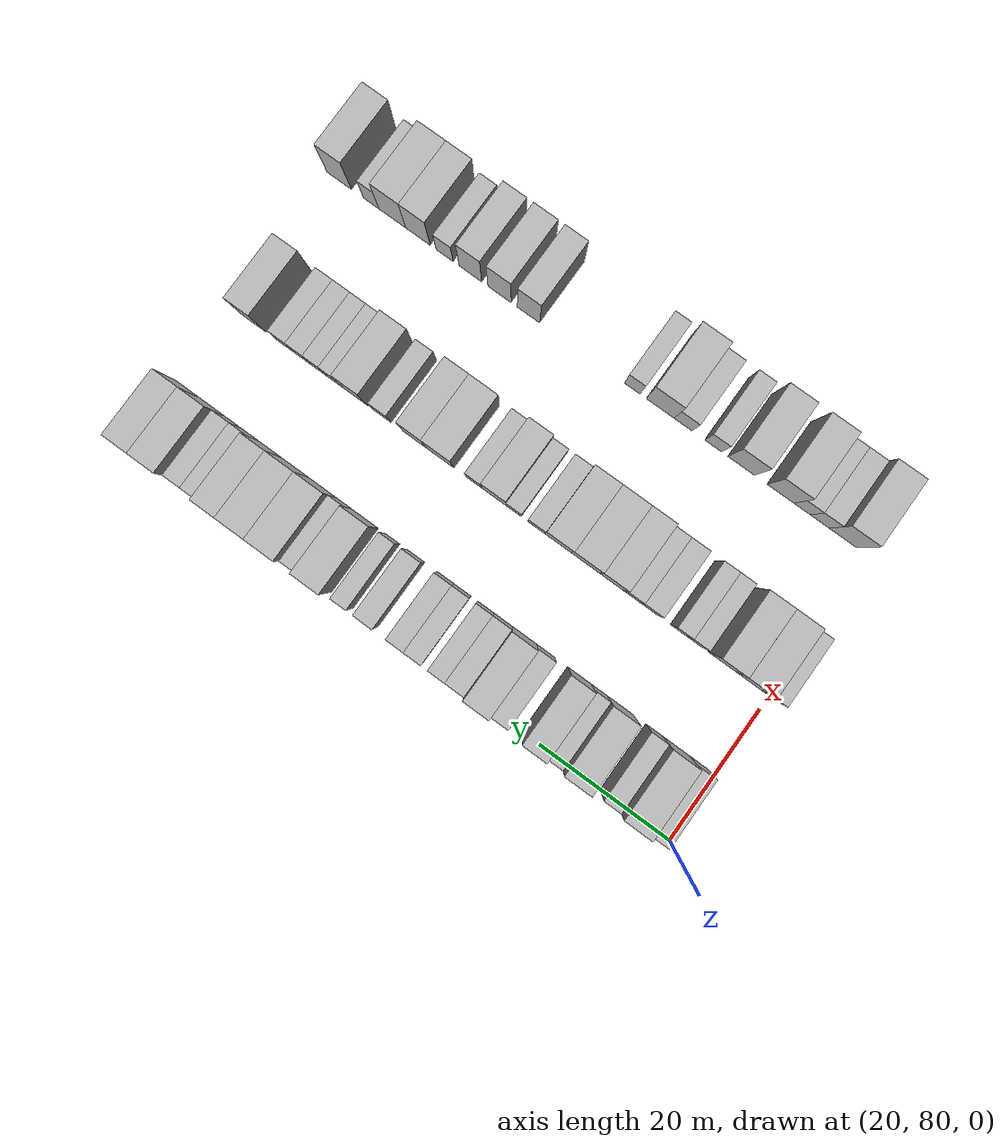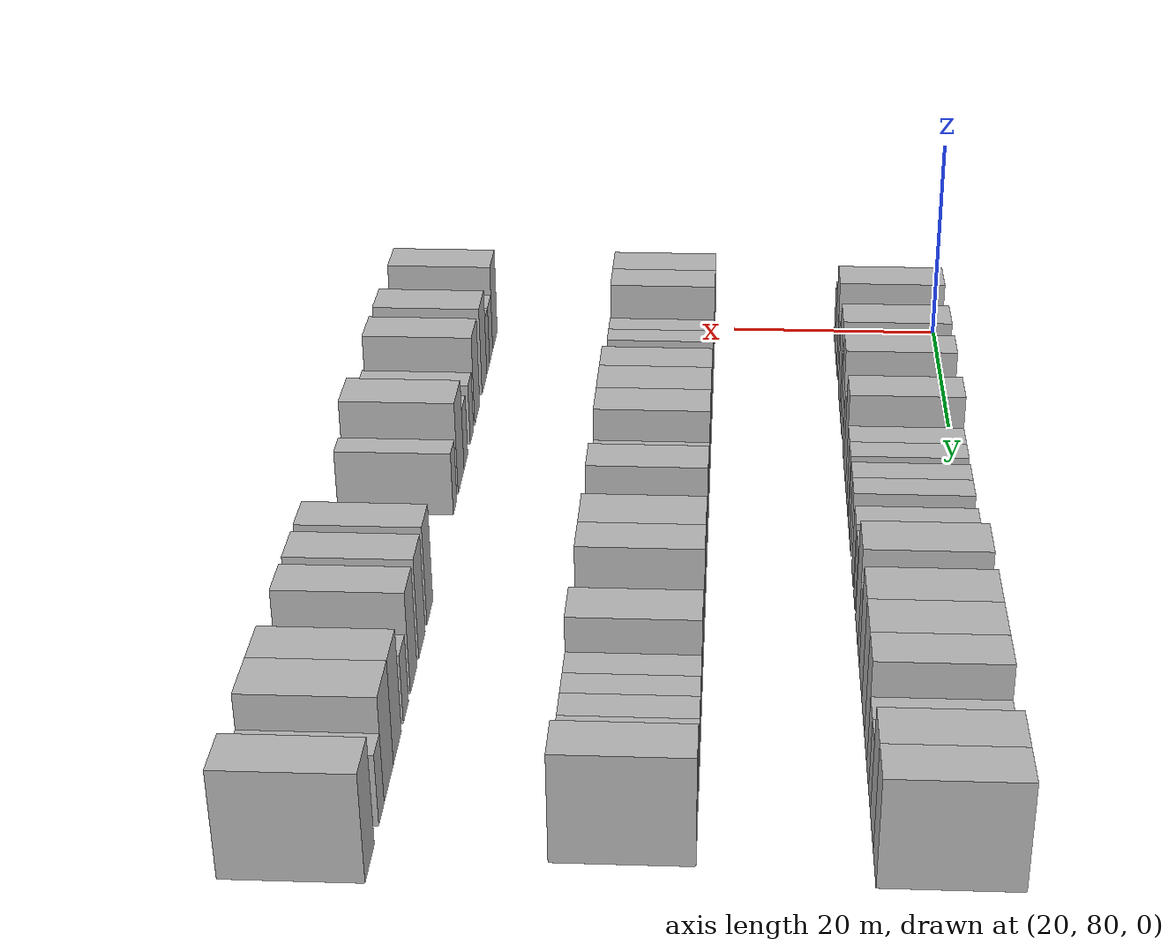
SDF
<sdf version="1.6">
 <world name="default">
  <model name="building_89">
   <static>1</static>
   <pose>25.0000 82.5690 0 0.000000 0.000000 0.000000</pose>
   <link name="link">
    <pose>0 0 3.00 0 0 0</pose>
    <collision name="collision"><geometry><box><size>10.0000 2.9511 6.0000</size></box></geometry></collision>
    <visual name="visual">
     <cast_shadows>0</cast_shadows>
     <geometry><box><size>10.0000 2.9511 6.0000</size></box></geometry>
     <material>
      <script>
       <uri>model://HANNAS_wall/materials/scripts</uri>
       <uri>model://HANNAS_wall/materials/textures</uri>
       <name>vrc/HANNAS_wall</name>
      </script>
     </material>
    </visual>
   </link>
  </model>
  <model name="building_90">
   <static>1</static>
   <pose>25.0000 86.0949 0 0.000000 0.000000 0.000000</pose>
   <link name="link">
    <pose>0 0 4.50 0 0 0</pose>
    <collision name="collision"><geometry><box><size>10.0000 4.1008 9.0000</size></box></geometry></collision>
    <visual name="visual">
     <cast_shadows>0</cast_shadows>
     <geometry><box><size>10.0000 4.1008 9.0000</size></box></geometry>
     <material>
      <script>
       <uri>model://HANNAS_wall/materials/scripts</uri>
       <uri>model://HANNAS_wall/materials/textures</uri>
       <name>vrc/HANNAS_wall</name>
      </script>
     </material>
    </visual>
   </link>
  </model>
  <model name="building_91">
   <static>1</static>
   <pose>25.0000 89.4297 0 0.000000 0.000000 0.000000</pose>
   <link name="link">
    <pose>0 0 3.00 0 0 0</pose>
    <collision name="collision"><geometry><box><size>10.0000 2.5689 6.0000</size></box></geometry></collision>
    <visual name="visual">
     <cast_shadows>0</cast_shadows>
     <geometry><box><size>10.0000 2.5689 6.0000</size></box></geometry>
     <material>
      <script>
       <uri>model://HANNAS_wall/materials/scripts</uri>
       <uri>model://HANNAS_wall/materials/textures</uri>
       <name>vrc/HANNAS_wall</name>
      </script>
     </material>
    </visual>
   </link>
  </model>
  <model name="building_92">
   <static>1</static>
   <pose>25.0000 94.7236 0 0.000000 0.000000 0.000000</pose>
   <link name="link">
    <pose>0 0 4.50 0 0 0</pose>
    <collision name="collision"><geometry><box><size>10.0000 4.0187 9.0000</size></box></geometry></collision>
    <visual name="visual">
     <cast_shadows>0</cast_shadows>
     <geometry><box><size>10.0000 4.0187 9.0000</size></box></geometry>
     <material>
      <script>
       <uri>model://HANNAS_wall/materials/scripts</uri>
       <uri>model://HANNAS_wall/materials/textures</uri>
       <name>vrc/HANNAS_wall</name>
      </script>
     </material>
    </visual>
   </link>
  </model>
  <model name="building_93">
   <static>1</static>
   <pose>25.0000 97.9771 0 0.000000 0.000000 0.000000</pose>
   <link name="link">
    <pose>0 0 3.00 0 0 0</pose>
    <collision name="collision"><geometry><box><size>10.0000 2.4884 6.0000</size></box></geometry></collision>
    <visual name="visual">
     <cast_shadows>0</cast_shadows>
     <geometry><box><size>10.0000 2.4884 6.0000</size></box></geometry>
     <material>
      <script>
       <uri>model://HANNAS_wall/materials/scripts</uri>
       <uri>model://HANNAS_wall/materials/textures</uri>
       <name>vrc/HANNAS_wall</name>
      </script>
     </material>
    </visual>
   </link>
  </model>
  <model name="building_94">
   <static>1</static>
   <pose>25.0000 101.0324 0 0.000000 0.000000 0.000000</pose>
   <link name="link">
    <pose>0 0 4.50 0 0 0</pose>
    <collision name="collision"><geometry><box><size>10.0000 3.6221 9.0000</size></box></geometry></collision>
    <visual name="visual">
     <cast_shadows>0</cast_shadows>
     <geometry><box><size>10.0000 3.6221 9.0000</size></box></geometry>
     <material>
      <script>
       <uri>model://HANNAS_wall/materials/scripts</uri>
       <uri>model://HANNAS_wall/materials/textures</uri>
       <name>vrc/HANNAS_wall</name>
      </script>
     </material>
    </visual>
   </link>
  </model>
  <model name="building_95">
   <static>1</static>
   <pose>25.0000 106.2454 0 0.000000 0.000000 0.000000</pose>
   <link name="link">
    <pose>0 0 3.00 0 0 0</pose>
    <collision name="collision"><geometry><box><size>10.0000 2.8039 6.0000</size></box></geometry></collision>
    <visual name="visual">
     <cast_shadows>0</cast_shadows>
     <geometry><box><size>10.0000 2.8039 6.0000</size></box></geometry>
     <material>
      <script>
       <uri>model://HANNAS_wall/materials/scripts</uri>
       <uri>model://HANNAS_wall/materials/textures</uri>
       <name>vrc/HANNAS_wall</name>
      </script>
     </material>
    </visual>
   </link>
  </model>
  <model name="building_96">
   <static>1</static>
   <pose>25.0000 109.5776 0 0.000000 0.000000 0.000000</pose>
   <link name="link">
    <pose>0 0 4.50 0 0 0</pose>
    <collision name="collision"><geometry><box><size>10.0000 3.8605 9.0000</size></box></geometry></collision>
    <visual name="visual">
     <cast_shadows>0</cast_shadows>
     <geometry><box><size>10.0000 3.8605 9.0000</size></box></geometry>
     <material>
      <script>
       <uri>model://HANNAS_wall/materials/scripts</uri>
       <uri>model://HANNAS_wall/materials/textures</uri>
       <name>vrc/HANNAS_wall</name>
      </script>
     </material>
    </visual>
   </link>
  </model>
  <model name="building_97">
   <static>1</static>
   <pose>25.0000 112.9548 0 0.000000 0.000000 0.000000</pose>
   <link name="link">
    <pose>0 0 3.00 0 0 0</pose>
    <collision name="collision"><geometry><box><size>10.0000 2.8938 6.0000</size></box></geometry></collision>
    <visual name="visual">
     <cast_shadows>0</cast_shadows>
     <geometry><box><size>10.0000 2.8938 6.0000</size></box></geometry>
     <material>
      <script>
       <uri>model://HANNAS_wall/materials/scripts</uri>
       <uri>model://HANNAS_wall/materials/textures</uri>
       <name>vrc/HANNAS_wall</name>
      </script>
     </material>
    </visual>
   </link>
  </model>
  <model name="building_98">
   <static>1</static>
   <pose>25.0000 115.6893 0 0.000000 0.000000 0.000000</pose>
   <link name="link">
    <pose>0 0 3.00 0 0 0</pose>
    <collision name="collision"><geometry><box><size>10.0000 2.5752 6.0000</size></box></geometry></collision>
    <visual name="visual">
     <cast_shadows>0</cast_shadows>
     <geometry><box><size>10.0000 2.5752 6.0000</size></box></geometry>
     <material>
      <script>
       <uri>model://HANNAS_wall/materials/scripts</uri>
       <uri>model://HANNAS_wall/materials/textures</uri>
       <name>vrc/HANNAS_wall</name>
      </script>
     </material>
    </visual>
   </link>
  </model>
  <model name="building_99">
   <static>1</static>
   <pose>25.0000 119.3083 0 0.000000 0.000000 0.000000</pose>
   <link name="link">
    <pose>0 0 3.00 0 0 0</pose>
    <collision name="collision"><geometry><box><size>10.0000 2.6627 6.0000</size></box></geometry></collision>
    <visual name="visual">
     <cast_shadows>0</cast_shadows>
     <geometry><box><size>10.0000 2.6627 6.0000</size></box></geometry>
     <material>
      <script>
       <uri>model://HANNAS_wall/materials/scripts</uri>
       <uri>model://HANNAS_wall/materials/textures</uri>
       <name>vrc/HANNAS_wall</name>
      </script>
     </material>
    </visual>
   </link>
  </model>
  <model name="building_100">
   <static>1</static>
   <pose>25.0000 121.9850 0 0.000000 0.000000 0.000000</pose>
   <link name="link">
    <pose>0 0 3.00 0 0 0</pose>
    <collision name="collision"><geometry><box><size>10.0000 2.6906 6.0000</size></box></geometry></collision>
    <visual name="visual">
     <cast_shadows>0</cast_shadows>
     <geometry><box><size>10.0000 2.6906 6.0000</size></box></geometry>
     <material>
      <script>
       <uri>model://HANNAS_wall/materials/scripts</uri>
       <uri>model://HANNAS_wall/materials/textures</uri>
       <name>vrc/HANNAS_wall</name>
      </script>
     </material>
    </visual>
   </link>
  </model>
  <model name="building_101">
   <static>1</static>
   <pose>25.0000 126.8206 0 0.000000 0.000000 0.000000</pose>
   <link name="link">
    <pose>0 0 3.00 0 0 0</pose>
    <collision name="collision"><geometry><box><size>10.0000 2.9807 6.0000</size></box></geometry></collision>
    <visual name="visual">
     <cast_shadows>0</cast_shadows>
     <geometry><box><size>10.0000 2.9807 6.0000</size></box></geometry>
     <material>
      <script>
       <uri>model://HANNAS_wall/materials/scripts</uri>
       <uri>model://HANNAS_wall/materials/textures</uri>
       <name>vrc/HANNAS_wall</name>
      </script>
     </material>
    </visual>
   </link>
  </model>
  <model name="building_102">
   <static>1</static>
   <pose>25.0000 130.5348 0 0.000000 0.000000 0.000000</pose>
   <link name="link">
    <pose>0 0 3.00 0 0 0</pose>
    <collision name="collision"><geometry><box><size>10.0000 2.4476 6.0000</size></box></geometry></collision>
    <visual name="visual">
     <cast_shadows>0</cast_shadows>
     <geometry><box><size>10.0000 2.4476 6.0000</size></box></geometry>
     <material>
      <script>
       <uri>model://HANNAS_wall/materials/scripts</uri>
       <uri>model://HANNAS_wall/materials/textures</uri>
       <name>vrc/HANNAS_wall</name>
      </script>
     </material>
    </visual>
   </link>
  </model>
  <model name="building_103">
   <static>1</static>
   <pose>25.0000 134.9157 0 0.000000 0.000000 0.000000</pose>
   <link name="link">
    <pose>0 0 4.50 0 0 0</pose>
    <collision name="collision"><geometry><box><size>10.0000 4.3143 9.0000</size></box></geometry></collision>
    <visual name="visual">
     <cast_shadows>0</cast_shadows>
     <geometry><box><size>10.0000 4.3143 9.0000</size></box></geometry>
     <material>
      <script>
       <uri>model://HANNAS_wall/materials/scripts</uri>
       <uri>model://HANNAS_wall/materials/textures</uri>
       <name>vrc/HANNAS_wall</name>
      </script>
     </material>
    </visual>
   </link>
  </model>
  <model name="building_104">
   <static>1</static>
   <pose>25.0000 138.3014 0 0.000000 0.000000 0.000000</pose>
   <link name="link">
    <pose>0 0 3.00 0 0 0</pose>
    <collision name="collision"><geometry><box><size>10.0000 2.4571 6.0000</size></box></geometry></collision>
    <visual name="visual">
     <cast_shadows>0</cast_shadows>
     <geometry><box><size>10.0000 2.4571 6.0000</size></box></geometry>
     <material>
      <script>
       <uri>model://HANNAS_wall/materials/scripts</uri>
       <uri>model://HANNAS_wall/materials/textures</uri>
       <name>vrc/HANNAS_wall</name>
      </script>
     </material>
    </visual>
   </link>
  </model>
  <model name="building_105">
   <static>1</static>
   <pose>25.0000 141.7699 0 0.000000 0.000000 0.000000</pose>
   <link name="link">
    <pose>0 0 4.50 0 0 0</pose>
    <collision name="collision"><geometry><box><size>10.0000 4.4799 9.0000</size></box></geometry></collision>
    <visual name="visual">
     <cast_shadows>0</cast_shadows>
     <geometry><box><size>10.0000 4.4799 9.0000</size></box></geometry>
     <material>
      <script>
       <uri>model://HANNAS_wall/materials/scripts</uri>
       <uri>model://HANNAS_wall/materials/textures</uri>
       <name>vrc/HANNAS_wall</name>
      </script>
     </material>
    </visual>
   </link>
  </model>
  <model name="building_106">
   <static>1</static>
   <pose>25.0000 146.1961 0 0.000000 0.000000 0.000000</pose>
   <link name="link">
    <pose>0 0 4.50 0 0 0</pose>
    <collision name="collision"><geometry><box><size>10.0000 4.3724 9.0000</size></box></geometry></collision>
    <visual name="visual">
     <cast_shadows>0</cast_shadows>
     <geometry><box><size>10.0000 4.3724 9.0000</size></box></geometry>
     <material>
      <script>
       <uri>model://HANNAS_wall/materials/scripts</uri>
       <uri>model://HANNAS_wall/materials/textures</uri>
       <name>vrc/HANNAS_wall</name>
      </script>
     </material>
    </visual>
   </link>
  </model>
  <model name="building_107">
   <static>1</static>
   <pose>25.0000 150.2504 0 0.000000 0.000000 0.000000</pose>
   <link name="link">
    <pose>0 0 4.50 0 0 0</pose>
    <collision name="collision"><geometry><box><size>10.0000 3.7363 9.0000</size></box></geometry></collision>
    <visual name="visual">
     <cast_shadows>0</cast_shadows>
     <geometry><box><size>10.0000 3.7363 9.0000</size></box></geometry>
     <material>
      <script>
       <uri>model://HANNAS_wall/materials/scripts</uri>
       <uri>model://HANNAS_wall/materials/textures</uri>
       <name>vrc/HANNAS_wall</name>
      </script>
     </material>
    </visual>
   </link>
  </model>
  <model name="building_108">
   <static>1</static>
   <pose>25.0000 153.4918 0 0.000000 0.000000 0.000000</pose>
   <link name="link">
    <pose>0 0 3.00 0 0 0</pose>
    <collision name="collision"><geometry><box><size>10.0000 2.7466 6.0000</size></box></geometry></collision>
    <visual name="visual">
     <cast_shadows>0</cast_shadows>
     <geometry><box><size>10.0000 2.7466 6.0000</size></box></geometry>
     <material>
      <script>
       <uri>model://HANNAS_wall/materials/scripts</uri>
       <uri>model://HANNAS_wall/materials/textures</uri>
       <name>vrc/HANNAS_wall</name>
      </script>
     </material>
    </visual>
   </link>
  </model>
  <model name="building_109">
   <static>1</static>
   <pose>25.0000 156.2119 0 0.000000 0.000000 0.000000</pose>
   <link name="link">
    <pose>0 0 3.00 0 0 0</pose>
    <collision name="collision"><geometry><box><size>10.0000 2.6937 6.0000</size></box></geometry></collision>
    <visual name="visual">
     <cast_shadows>0</cast_shadows>
     <geometry><box><size>10.0000 2.6937 6.0000</size></box></geometry>
     <material>
      <script>
       <uri>model://HANNAS_wall/materials/scripts</uri>
       <uri>model://HANNAS_wall/materials/textures</uri>
       <name>vrc/HANNAS_wall</name>
      </script>
     </material>
    </visual>
   </link>
  </model>
  <model name="building_110">
   <static>1</static>
   <pose>25.0000 159.6145 0 0.000000 0.000000 0.000000</pose>
   <link name="link">
    <pose>0 0 4.50 0 0 0</pose>
    <collision name="collision"><geometry><box><size>10.0000 4.1115 9.0000</size></box></geometry></collision>
    <visual name="visual">
     <cast_shadows>0</cast_shadows>
     <geometry><box><size>10.0000 4.1115 9.0000</size></box></geometry>
     <material>
      <script>
       <uri>model://HANNAS_wall/materials/scripts</uri>
       <uri>model://HANNAS_wall/materials/textures</uri>
       <name>vrc/HANNAS_wall</name>
      </script>
     </material>
    </visual>
   </link>
  </model>
  <model name="building_111">
   <static>1</static>
   <pose>25.0000 163.5940 0 0.000000 0.000000 0.000000</pose>
   <link name="link">
    <pose>0 0 4.50 0 0 0</pose>
    <collision name="collision"><geometry><box><size>10.0000 3.8473 9.0000</size></box></geometry></collision>
    <visual name="visual">
     <cast_shadows>0</cast_shadows>
     <geometry><box><size>10.0000 3.8473 9.0000</size></box></geometry>
     <material>
      <script>
       <uri>model://HANNAS_wall/materials/scripts</uri>
       <uri>model://HANNAS_wall/materials/textures</uri>
       <name>vrc/HANNAS_wall</name>
      </script>
     </material>
    </visual>
   </link>
  </model>
  <model name="building_218">
   <static>1</static>
   <pose>47.0000 80.3409 0 0.000000 0.000000 0.000000</pose>
   <link name="link">
    <pose>0 0 3.00 0 0 0</pose>
    <collision name="collision"><geometry><box><size>10.0000 2.4952 6.0000</size></box></geometry></collision>
    <visual name="visual">
     <cast_shadows>0</cast_shadows>
     <geometry><box><size>10.0000 2.4952 6.0000</size></box></geometry>
     <material>
      <script>
       <uri>model://HANNAS_wall/materials/scripts</uri>
       <uri>model://HANNAS_wall/materials/textures</uri>
       <name>vrc/HANNAS_wall</name>
      </script>
     </material>
    </visual>
   </link>
  </model>
  <model name="building_219">
   <static>1</static>
   <pose>47.0000 83.6094 0 0.000000 0.000000 0.000000</pose>
   <link name="link">
    <pose>0 0 4.50 0 0 0</pose>
    <collision name="collision"><geometry><box><size>10.0000 4.0419 9.0000</size></box></geometry></collision>
    <visual name="visual">
     <cast_shadows>0</cast_shadows>
     <geometry><box><size>10.0000 4.0419 9.0000</size></box></geometry>
     <material>
      <script>
       <uri>model://HANNAS_wall/materials/scripts</uri>
       <uri>model://HANNAS_wall/materials/textures</uri>
       <name>vrc/HANNAS_wall</name>
      </script>
     </material>
    </visual>
   </link>
  </model>
  <model name="building_220">
   <static>1</static>
   <pose>47.0000 87.5590 0 0.000000 0.000000 0.000000</pose>
   <link name="link">
    <pose>0 0 4.50 0 0 0</pose>
    <collision name="collision"><geometry><box><size>10.0000 3.8572 9.0000</size></box></geometry></collision>
    <visual name="visual">
     <cast_shadows>0</cast_shadows>
     <geometry><box><size>10.0000 3.8572 9.0000</size></box></geometry>
     <material>
      <script>
       <uri>model://HANNAS_wall/materials/scripts</uri>
       <uri>model://HANNAS_wall/materials/textures</uri>
       <name>vrc/HANNAS_wall</name>
      </script>
     </material>
    </visual>
   </link>
  </model>
  <model name="building_221">
   <static>1</static>
   <pose>47.0000 91.6969 0 0.000000 0.000000 0.000000</pose>
   <link name="link">
    <pose>0 0 3.00 0 0 0</pose>
    <collision name="collision"><geometry><box><size>10.0000 2.4188 6.0000</size></box></geometry></collision>
    <visual name="visual">
     <cast_shadows>0</cast_shadows>
     <geometry><box><size>10.0000 2.4188 6.0000</size></box></geometry>
     <material>
      <script>
       <uri>model://HANNAS_wall/materials/scripts</uri>
       <uri>model://HANNAS_wall/materials/textures</uri>
       <name>vrc/HANNAS_wall</name>
      </script>
     </material>
    </visual>
   </link>
  </model>
  <model name="building_222">
   <static>1</static>
   <pose>47.0000 94.1097 0 0.000000 0.000000 0.000000</pose>
   <link name="link">
    <pose>0 0 3.00 0 0 0</pose>
    <collision name="collision"><geometry><box><size>10.0000 2.4068 6.0000</size></box></geometry></collision>
    <visual name="visual">
     <cast_shadows>0</cast_shadows>
     <geometry><box><size>10.0000 2.4068 6.0000</size></box></geometry>
     <material>
      <script>
       <uri>model://HANNAS_wall/materials/scripts</uri>
       <uri>model://HANNAS_wall/materials/textures</uri>
       <name>vrc/HANNAS_wall</name>
      </script>
     </material>
    </visual>
   </link>
  </model>
  <model name="building_223">
   <static>1</static>
   <pose>47.0000 98.7558 0 0.000000 0.000000 0.000000</pose>
   <link name="link">
    <pose>0 0 3.00 0 0 0</pose>
    <collision name="collision"><geometry><box><size>10.0000 2.8852 6.0000</size></box></geometry></collision>
    <visual name="visual">
     <cast_shadows>0</cast_shadows>
     <geometry><box><size>10.0000 2.8852 6.0000</size></box></geometry>
     <material>
      <script>
       <uri>model://HANNAS_wall/materials/scripts</uri>
       <uri>model://HANNAS_wall/materials/textures</uri>
       <name>vrc/HANNAS_wall</name>
      </script>
     </material>
    </visual>
   </link>
  </model>
  <model name="building_224">
   <static>1</static>
   <pose>47.0000 101.5169 0 0.000000 0.000000 0.000000</pose>
   <link name="link">
    <pose>0 0 3.00 0 0 0</pose>
    <collision name="collision"><geometry><box><size>10.0000 2.6370 6.0000</size></box></geometry></collision>
    <visual name="visual">
     <cast_shadows>0</cast_shadows>
     <geometry><box><size>10.0000 2.6370 6.0000</size></box></geometry>
     <material>
      <script>
       <uri>model://HANNAS_wall/materials/scripts</uri>
       <uri>model://HANNAS_wall/materials/textures</uri>
       <name>vrc/HANNAS_wall</name>
      </script>
     </material>
    </visual>
   </link>
  </model>
  <model name="building_225">
   <static>1</static>
   <pose>47.0000 104.7259 0 0.000000 0.000000 0.000000</pose>
   <link name="link">
    <pose>0 0 4.50 0 0 0</pose>
    <collision name="collision"><geometry><box><size>10.0000 3.7812 9.0000</size></box></geometry></collision>
    <visual name="visual">
     <cast_shadows>0</cast_shadows>
     <geometry><box><size>10.0000 3.7812 9.0000</size></box></geometry>
     <material>
      <script>
       <uri>model://HANNAS_wall/materials/scripts</uri>
       <uri>model://HANNAS_wall/materials/textures</uri>
       <name>vrc/HANNAS_wall</name>
      </script>
     </material>
    </visual>
   </link>
  </model>
  <model name="building_226">
   <static>1</static>
   <pose>47.0000 108.7806 0 0.000000 0.000000 0.000000</pose>
   <link name="link">
    <pose>0 0 4.50 0 0 0</pose>
    <collision name="collision"><geometry><box><size>10.0000 4.3280 9.0000</size></box></geometry></collision>
    <visual name="visual">
     <cast_shadows>0</cast_shadows>
     <geometry><box><size>10.0000 4.3280 9.0000</size></box></geometry>
     <material>
      <script>
       <uri>model://HANNAS_wall/materials/scripts</uri>
       <uri>model://HANNAS_wall/materials/textures</uri>
       <name>vrc/HANNAS_wall</name>
      </script>
     </material>
    </visual>
   </link>
  </model>
  <model name="building_227">
   <static>1</static>
   <pose>47.0000 112.9967 0 0.000000 0.000000 0.000000</pose>
   <link name="link">
    <pose>0 0 4.50 0 0 0</pose>
    <collision name="collision"><geometry><box><size>10.0000 4.1043 9.0000</size></box></geometry></collision>
    <visual name="visual">
     <cast_shadows>0</cast_shadows>
     <geometry><box><size>10.0000 4.1043 9.0000</size></box></geometry>
     <material>
      <script>
       <uri>model://HANNAS_wall/materials/scripts</uri>
       <uri>model://HANNAS_wall/materials/textures</uri>
       <name>vrc/HANNAS_wall</name>
      </script>
     </material>
    </visual>
   </link>
  </model>
  <model name="building_228">
   <static>1</static>
   <pose>47.0000 116.4003 0 0.000000 0.000000 0.000000</pose>
   <link name="link">
    <pose>0 0 3.00 0 0 0</pose>
    <collision name="collision"><geometry><box><size>10.0000 2.7030 6.0000</size></box></geometry></collision>
    <visual name="visual">
     <cast_shadows>0</cast_shadows>
     <geometry><box><size>10.0000 2.7030 6.0000</size></box></geometry>
     <material>
      <script>
       <uri>model://HANNAS_wall/materials/scripts</uri>
       <uri>model://HANNAS_wall/materials/textures</uri>
       <name>vrc/HANNAS_wall</name>
      </script>
     </material>
    </visual>
   </link>
  </model>
  <model name="building_229">
   <static>1</static>
   <pose>47.0000 119.9584 0 0.000000 0.000000 0.000000</pose>
   <link name="link">
    <pose>0 0 3.00 0 0 0</pose>
    <collision name="collision"><geometry><box><size>10.0000 2.4132 6.0000</size></box></geometry></collision>
    <visual name="visual">
     <cast_shadows>0</cast_shadows>
     <geometry><box><size>10.0000 2.4132 6.0000</size></box></geometry>
     <material>
      <script>
       <uri>model://HANNAS_wall/materials/scripts</uri>
       <uri>model://HANNAS_wall/materials/textures</uri>
       <name>vrc/HANNAS_wall</name>
      </script>
     </material>
    </visual>
   </link>
  </model>
  <model name="building_230">
   <static>1</static>
   <pose>47.0000 123.0456 0 0.000000 0.000000 0.000000</pose>
   <link name="link">
    <pose>0 0 4.50 0 0 0</pose>
    <collision name="collision"><geometry><box><size>10.0000 3.7612 9.0000</size></box></geometry></collision>
    <visual name="visual">
     <cast_shadows>0</cast_shadows>
     <geometry><box><size>10.0000 3.7612 9.0000</size></box></geometry>
     <material>
      <script>
       <uri>model://HANNAS_wall/materials/scripts</uri>
       <uri>model://HANNAS_wall/materials/textures</uri>
       <name>vrc/HANNAS_wall</name>
      </script>
     </material>
    </visual>
   </link>
  </model>
  <model name="building_231">
   <static>1</static>
   <pose>47.0000 126.2044 0 0.000000 0.000000 0.000000</pose>
   <link name="link">
    <pose>0 0 3.00 0 0 0</pose>
    <collision name="collision"><geometry><box><size>10.0000 2.5562 6.0000</size></box></geometry></collision>
    <visual name="visual">
     <cast_shadows>0</cast_shadows>
     <geometry><box><size>10.0000 2.5562 6.0000</size></box></geometry>
     <material>
      <script>
       <uri>model://HANNAS_wall/materials/scripts</uri>
       <uri>model://HANNAS_wall/materials/textures</uri>
       <name>vrc/HANNAS_wall</name>
      </script>
     </material>
    </visual>
   </link>
  </model>
  <model name="building_232">
   <static>1</static>
   <pose>47.0000 131.6914 0 0.000000 0.000000 0.000000</pose>
   <link name="link">
    <pose>0 0 4.50 0 0 0</pose>
    <collision name="collision"><geometry><box><size>10.0000 4.4179 9.0000</size></box></geometry></collision>
    <visual name="visual">
     <cast_shadows>0</cast_shadows>
     <geometry><box><size>10.0000 4.4179 9.0000</size></box></geometry>
     <material>
      <script>
       <uri>model://HANNAS_wall/materials/scripts</uri>
       <uri>model://HANNAS_wall/materials/textures</uri>
       <name>vrc/HANNAS_wall</name>
      </script>
     </material>
    </visual>
   </link>
  </model>
  <model name="building_233">
   <static>1</static>
   <pose>47.0000 135.7543 0 0.000000 0.000000 0.000000</pose>
   <link name="link">
    <pose>0 0 4.50 0 0 0</pose>
    <collision name="collision"><geometry><box><size>10.0000 3.7079 9.0000</size></box></geometry></collision>
    <visual name="visual">
     <cast_shadows>0</cast_shadows>
     <geometry><box><size>10.0000 3.7079 9.0000</size></box></geometry>
     <material>
      <script>
       <uri>model://HANNAS_wall/materials/scripts</uri>
       <uri>model://HANNAS_wall/materials/textures</uri>
       <name>vrc/HANNAS_wall</name>
      </script>
     </material>
    </visual>
   </link>
  </model>
  <model name="building_234">
   <static>1</static>
   <pose>47.0000 140.9794 0 0.000000 0.000000 0.000000</pose>
   <link name="link">
    <pose>0 0 3.00 0 0 0</pose>
    <collision name="collision"><geometry><box><size>10.0000 2.7422 6.0000</size></box></geometry></collision>
    <visual name="visual">
     <cast_shadows>0</cast_shadows>
     <geometry><box><size>10.0000 2.7422 6.0000</size></box></geometry>
     <material>
      <script>
       <uri>model://HANNAS_wall/materials/scripts</uri>
       <uri>model://HANNAS_wall/materials/textures</uri>
       <name>vrc/HANNAS_wall</name>
      </script>
     </material>
    </visual>
   </link>
  </model>
  <model name="building_235">
   <static>1</static>
   <pose>47.0000 145.3841 0 0.000000 0.000000 0.000000</pose>
   <link name="link">
    <pose>0 0 4.50 0 0 0</pose>
    <collision name="collision"><geometry><box><size>10.0000 4.0673 9.0000</size></box></geometry></collision>
    <visual name="visual">
     <cast_shadows>0</cast_shadows>
     <geometry><box><size>10.0000 4.0673 9.0000</size></box></geometry>
     <material>
      <script>
       <uri>model://HANNAS_wall/materials/scripts</uri>
       <uri>model://HANNAS_wall/materials/textures</uri>
       <name>vrc/HANNAS_wall</name>
      </script>
     </material>
    </visual>
   </link>
  </model>
  <model name="building_236">
   <static>1</static>
   <pose>47.0000 148.7516 0 0.000000 0.000000 0.000000</pose>
   <link name="link">
    <pose>0 0 3.00 0 0 0</pose>
    <collision name="collision"><geometry><box><size>10.0000 2.6677 6.0000</size></box></geometry></collision>
    <visual name="visual">
     <cast_shadows>0</cast_shadows>
     <geometry><box><size>10.0000 2.6677 6.0000</size></box></geometry>
     <material>
      <script>
       <uri>model://HANNAS_wall/materials/scripts</uri>
       <uri>model://HANNAS_wall/materials/textures</uri>
       <name>vrc/HANNAS_wall</name>
      </script>
     </material>
    </visual>
   </link>
  </model>
  <model name="building_237">
   <static>1</static>
   <pose>47.0000 151.3244 0 0.000000 0.000000 0.000000</pose>
   <link name="link">
    <pose>0 0 3.00 0 0 0</pose>
    <collision name="collision"><geometry><box><size>10.0000 2.4778 6.0000</size></box></geometry></collision>
    <visual name="visual">
     <cast_shadows>0</cast_shadows>
     <geometry><box><size>10.0000 2.4778 6.0000</size></box></geometry>
     <material>
      <script>
       <uri>model://HANNAS_wall/materials/scripts</uri>
       <uri>model://HANNAS_wall/materials/textures</uri>
       <name>vrc/HANNAS_wall</name>
      </script>
     </material>
    </visual>
   </link>
  </model>
  <model name="building_238">
   <static>1</static>
   <pose>47.0000 153.9164 0 0.000000 0.000000 0.000000</pose>
   <link name="link">
    <pose>0 0 3.00 0 0 0</pose>
    <collision name="collision"><geometry><box><size>10.0000 2.7061 6.0000</size></box></geometry></collision>
    <visual name="visual">
     <cast_shadows>0</cast_shadows>
     <geometry><box><size>10.0000 2.7061 6.0000</size></box></geometry>
     <material>
      <script>
       <uri>model://HANNAS_wall/materials/scripts</uri>
       <uri>model://HANNAS_wall/materials/textures</uri>
       <name>vrc/HANNAS_wall</name>
      </script>
     </material>
    </visual>
   </link>
  </model>
  <model name="building_239">
   <static>1</static>
   <pose>47.0000 156.6345 0 0.000000 0.000000 0.000000</pose>
   <link name="link">
    <pose>0 0 3.00 0 0 0</pose>
    <collision name="collision"><geometry><box><size>10.0000 2.7301 6.0000</size></box></geometry></collision>
    <visual name="visual">
     <cast_shadows>0</cast_shadows>
     <geometry><box><size>10.0000 2.7301 6.0000</size></box></geometry>
     <material>
      <script>
       <uri>model://HANNAS_wall/materials/scripts</uri>
       <uri>model://HANNAS_wall/materials/textures</uri>
       <name>vrc/HANNAS_wall</name>
      </script>
     </material>
    </visual>
   </link>
  </model>
  <model name="building_240">
   <static>1</static>
   <pose>47.0000 161.9153 0 0.000000 0.000000 0.000000</pose>
   <link name="link">
    <pose>0 0 4.50 0 0 0</pose>
    <collision name="collision"><geometry><box><size>10.0000 3.8315 9.0000</size></box></geometry></collision>
    <visual name="visual">
     <cast_shadows>0</cast_shadows>
     <geometry><box><size>10.0000 3.8315 9.0000</size></box></geometry>
     <material>
      <script>
       <uri>model://HANNAS_wall/materials/scripts</uri>
       <uri>model://HANNAS_wall/materials/textures</uri>
       <name>vrc/HANNAS_wall</name>
      </script>
     </material>
    </visual>
   </link>
  </model>
  <model name="building_338">
   <static>1</static>
   <pose>69.0000 83.7034 0 0.000000 0.000000 0.000000</pose>
   <link name="link">
    <pose>0 0 4.50 0 0 0</pose>
    <collision name="collision"><geometry><box><size>10.0000 4.2393 9.0000</size></box></geometry></collision>
    <visual name="visual">
     <cast_shadows>0</cast_shadows>
     <geometry><box><size>10.0000 4.2393 9.0000</size></box></geometry>
     <material>
      <script>
       <uri>model://HANNAS_wall/materials/scripts</uri>
       <uri>model://HANNAS_wall/materials/textures</uri>
       <name>vrc/HANNAS_wall</name>
      </script>
     </material>
    </visual>
   </link>
  </model>
  <model name="building_339">
   <static>1</static>
   <pose>69.0000 87.2763 0 0.000000 0.000000 0.000000</pose>
   <link name="link">
    <pose>0 0 3.00 0 0 0</pose>
    <collision name="collision"><geometry><box><size>10.0000 2.9066 6.0000</size></box></geometry></collision>
    <visual name="visual">
     <cast_shadows>0</cast_shadows>
     <geometry><box><size>10.0000 2.9066 6.0000</size></box></geometry>
     <material>
      <script>
       <uri>model://HANNAS_wall/materials/scripts</uri>
       <uri>model://HANNAS_wall/materials/textures</uri>
       <name>vrc/HANNAS_wall</name>
      </script>
     </material>
    </visual>
   </link>
  </model>
  <model name="building_340">
   <static>1</static>
   <pose>69.0000 90.0042 0 0.000000 0.000000 0.000000</pose>
   <link name="link">
    <pose>0 0 3.00 0 0 0</pose>
    <collision name="collision"><geometry><box><size>10.0000 2.5492 6.0000</size></box></geometry></collision>
    <visual name="visual">
     <cast_shadows>0</cast_shadows>
     <geometry><box><size>10.0000 2.5492 6.0000</size></box></geometry>
     <material>
      <script>
       <uri>model://HANNAS_wall/materials/scripts</uri>
       <uri>model://HANNAS_wall/materials/textures</uri>
       <name>vrc/HANNAS_wall</name>
      </script>
     </material>
    </visual>
   </link>
  </model>
  <model name="building_341">
   <static>1</static>
   <pose>69.0000 93.3738 0 0.000000 0.000000 0.000000</pose>
   <link name="link">
    <pose>0 0 4.50 0 0 0</pose>
    <collision name="collision"><geometry><box><size>10.0000 4.1899 9.0000</size></box></geometry></collision>
    <visual name="visual">
     <cast_shadows>0</cast_shadows>
     <geometry><box><size>10.0000 4.1899 9.0000</size></box></geometry>
     <material>
      <script>
       <uri>model://HANNAS_wall/materials/scripts</uri>
       <uri>model://HANNAS_wall/materials/textures</uri>
       <name>vrc/HANNAS_wall</name>
      </script>
     </material>
    </visual>
   </link>
  </model>
  <model name="building_342">
   <static>1</static>
   <pose>69.0000 99.5535 0 0.000000 0.000000 0.000000</pose>
   <link name="link">
    <pose>0 0 4.50 0 0 0</pose>
    <collision name="collision"><geometry><box><size>10.0000 4.1695 9.0000</size></box></geometry></collision>
    <visual name="visual">
     <cast_shadows>0</cast_shadows>
     <geometry><box><size>10.0000 4.1695 9.0000</size></box></geometry>
     <material>
      <script>
       <uri>model://HANNAS_wall/materials/scripts</uri>
       <uri>model://HANNAS_wall/materials/textures</uri>
       <name>vrc/HANNAS_wall</name>
      </script>
     </material>
    </visual>
   </link>
  </model>
  <model name="building_343">
   <static>1</static>
   <pose>69.0000 103.9667 0 0.000000 0.000000 0.000000</pose>
   <link name="link">
    <pose>0 0 3.00 0 0 0</pose>
    <collision name="collision"><geometry><box><size>10.0000 2.6569 6.0000</size></box></geometry></collision>
    <visual name="visual">
     <cast_shadows>0</cast_shadows>
     <geometry><box><size>10.0000 2.6569 6.0000</size></box></geometry>
     <material>
      <script>
       <uri>model://HANNAS_wall/materials/scripts</uri>
       <uri>model://HANNAS_wall/materials/textures</uri>
       <name>vrc/HANNAS_wall</name>
      </script>
     </material>
    </visual>
   </link>
  </model>
  <model name="building_344">
   <static>1</static>
   <pose>69.0000 108.7120 0 0.000000 0.000000 0.000000</pose>
   <link name="link">
    <pose>0 0 3.00 0 0 0</pose>
    <collision name="collision"><geometry><box><size>10.0000 2.8338 6.0000</size></box></geometry></collision>
    <visual name="visual">
     <cast_shadows>0</cast_shadows>
     <geometry><box><size>10.0000 2.8338 6.0000</size></box></geometry>
     <material>
      <script>
       <uri>model://HANNAS_wall/materials/scripts</uri>
       <uri>model://HANNAS_wall/materials/textures</uri>
       <name>vrc/HANNAS_wall</name>
      </script>
     </material>
    </visual>
   </link>
  </model>
  <model name="building_345">
   <static>1</static>
   <pose>69.0000 112.3383 0 0.000000 0.000000 0.000000</pose>
   <link name="link">
    <pose>0 0 4.50 0 0 0</pose>
    <collision name="collision"><geometry><box><size>10.0000 4.4188 9.0000</size></box></geometry></collision>
    <visual name="visual">
     <cast_shadows>0</cast_shadows>
     <geometry><box><size>10.0000 4.4188 9.0000</size></box></geometry>
     <material>
      <script>
       <uri>model://HANNAS_wall/materials/scripts</uri>
       <uri>model://HANNAS_wall/materials/textures</uri>
       <name>vrc/HANNAS_wall</name>
      </script>
     </material>
    </visual>
   </link>
  </model>
  <model name="building_346">
   <static>1</static>
   <pose>69.0000 116.8040 0 0.000000 0.000000 0.000000</pose>
   <link name="link">
    <pose>0 0 3.00 0 0 0</pose>
    <collision name="collision"><geometry><box><size>10.0000 2.5124 6.0000</size></box></geometry></collision>
    <visual name="visual">
     <cast_shadows>0</cast_shadows>
     <geometry><box><size>10.0000 2.5124 6.0000</size></box></geometry>
     <material>
      <script>
       <uri>model://HANNAS_wall/materials/scripts</uri>
       <uri>model://HANNAS_wall/materials/textures</uri>
       <name>vrc/HANNAS_wall</name>
      </script>
     </material>
    </visual>
   </link>
  </model>
  <model name="building_347">
   <static>1</static>
   <pose>69.0000 133.4786 0 0.000000 0.000000 0.000000</pose>
   <link name="link">
    <pose>0 0 4.50 0 0 0</pose>
    <collision name="collision"><geometry><box><size>10.0000 3.6123 9.0000</size></box></geometry></collision>
    <visual name="visual">
     <cast_shadows>0</cast_shadows>
     <geometry><box><size>10.0000 3.6123 9.0000</size></box></geometry>
     <material>
      <script>
       <uri>model://HANNAS_wall/materials/scripts</uri>
       <uri>model://HANNAS_wall/materials/textures</uri>
       <name>vrc/HANNAS_wall</name>
      </script>
     </material>
    </visual>
   </link>
  </model>
  <model name="building_348">
   <static>1</static>
   <pose>69.0000 138.1702 0 0.000000 0.000000 0.000000</pose>
   <link name="link">
    <pose>0 0 4.50 0 0 0</pose>
    <collision name="collision"><geometry><box><size>10.0000 3.7708 9.0000</size></box></geometry></collision>
    <visual name="visual">
     <cast_shadows>0</cast_shadows>
     <geometry><box><size>10.0000 3.7708 9.0000</size></box></geometry>
     <material>
      <script>
       <uri>model://HANNAS_wall/materials/scripts</uri>
       <uri>model://HANNAS_wall/materials/textures</uri>
       <name>vrc/HANNAS_wall</name>
      </script>
     </material>
    </visual>
   </link>
  </model>
  <model name="building_349">
   <static>1</static>
   <pose>69.0000 142.8890 0 0.000000 0.000000 0.000000</pose>
   <link name="link">
    <pose>0 0 4.50 0 0 0</pose>
    <collision name="collision"><geometry><box><size>10.0000 3.6669 9.0000</size></box></geometry></collision>
    <visual name="visual">
     <cast_shadows>0</cast_shadows>
     <geometry><box><size>10.0000 3.6669 9.0000</size></box></geometry>
     <material>
      <script>
       <uri>model://HANNAS_wall/materials/scripts</uri>
       <uri>model://HANNAS_wall/materials/textures</uri>
       <name>vrc/HANNAS_wall</name>
      </script>
     </material>
    </visual>
   </link>
  </model>
  <model name="building_350">
   <static>1</static>
   <pose>69.0000 147.1023 0 0.000000 0.000000 0.000000</pose>
   <link name="link">
    <pose>0 0 3.00 0 0 0</pose>
    <collision name="collision"><geometry><box><size>10.0000 2.7597 6.0000</size></box></geometry></collision>
    <visual name="visual">
     <cast_shadows>0</cast_shadows>
     <geometry><box><size>10.0000 2.7597 6.0000</size></box></geometry>
     <material>
      <script>
       <uri>model://HANNAS_wall/materials/scripts</uri>
       <uri>model://HANNAS_wall/materials/textures</uri>
       <name>vrc/HANNAS_wall</name>
      </script>
     </material>
    </visual>
   </link>
  </model>
  <model name="building_351">
   <static>1</static>
   <pose>69.0000 151.4821 0 0.000000 0.000000 0.000000</pose>
   <link name="link">
    <pose>0 0 4.50 0 0 0</pose>
    <collision name="collision"><geometry><box><size>10.0000 4.0001 9.0000</size></box></geometry></collision>
    <visual name="visual">
     <cast_shadows>0</cast_shadows>
     <geometry><box><size>10.0000 4.0001 9.0000</size></box></geometry>
     <material>
      <script>
       <uri>model://HANNAS_wall/materials/scripts</uri>
       <uri>model://HANNAS_wall/materials/textures</uri>
       <name>vrc/HANNAS_wall</name>
      </script>
     </material>
    </visual>
   </link>
  </model>
  <model name="building_352">
   <static>1</static>
   <pose>69.0000 155.7006 0 0.000000 0.000000 0.000000</pose>
   <link name="link">
    <pose>0 0 4.50 0 0 0</pose>
    <collision name="collision"><geometry><box><size>10.0000 4.4369 9.0000</size></box></geometry></collision>
    <visual name="visual">
     <cast_shadows>0</cast_shadows>
     <geometry><box><size>10.0000 4.4369 9.0000</size></box></geometry>
     <material>
      <script>
       <uri>model://HANNAS_wall/materials/scripts</uri>
       <uri>model://HANNAS_wall/materials/textures</uri>
       <name>vrc/HANNAS_wall</name>
      </script>
     </material>
    </visual>
   </link>
  </model>
  <model name="building_353">
   <static>1</static>
   <pose>69.0000 159.1756 0 0.000000 0.000000 0.000000</pose>
   <link name="link">
    <pose>0 0 3.00 0 0 0</pose>
    <collision name="collision"><geometry><box><size>10.0000 2.5131 6.0000</size></box></geometry></collision>
    <visual name="visual">
     <cast_shadows>0</cast_shadows>
     <geometry><box><size>10.0000 2.5131 6.0000</size></box></geometry>
     <material>
      <script>
       <uri>model://HANNAS_wall/materials/scripts</uri>
       <uri>model://HANNAS_wall/materials/textures</uri>
       <name>vrc/HANNAS_wall</name>
      </script>
     </material>
    </visual>
   </link>
  </model>
  <model name="building_354">
   <static>1</static>
   <pose>69.0000 164.4516 0 0.000000 0.000000 0.000000</pose>
   <link name="link">
    <pose>0 0 4.50 0 0 0</pose>
    <collision name="collision"><geometry><box><size>10.0000 4.0389 9.0000</size></box></geometry></collision>
    <visual name="visual">
     <cast_shadows>0</cast_shadows>
     <geometry><box><size>10.0000 4.0389 9.0000</size></box></geometry>
     <material>
      <script>
       <uri>model://HANNAS_wall/materials/scripts</uri>
       <uri>model://HANNAS_wall/materials/textures</uri>
       <name>vrc/HANNAS_wall</name>
      </script>
     </material>
    </visual>
   </link>
  </model>
 </world>
</sdf>
